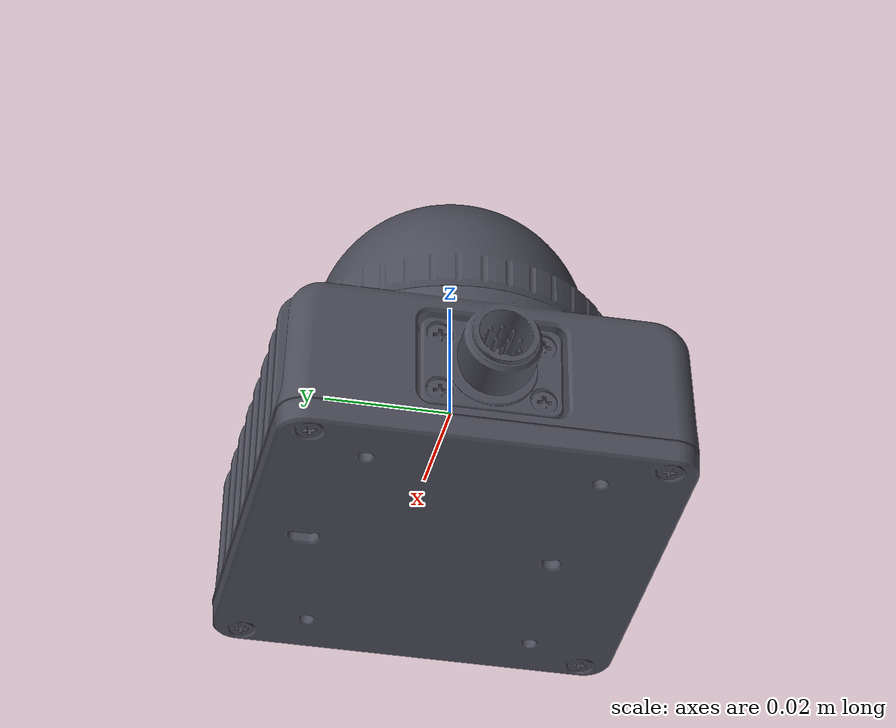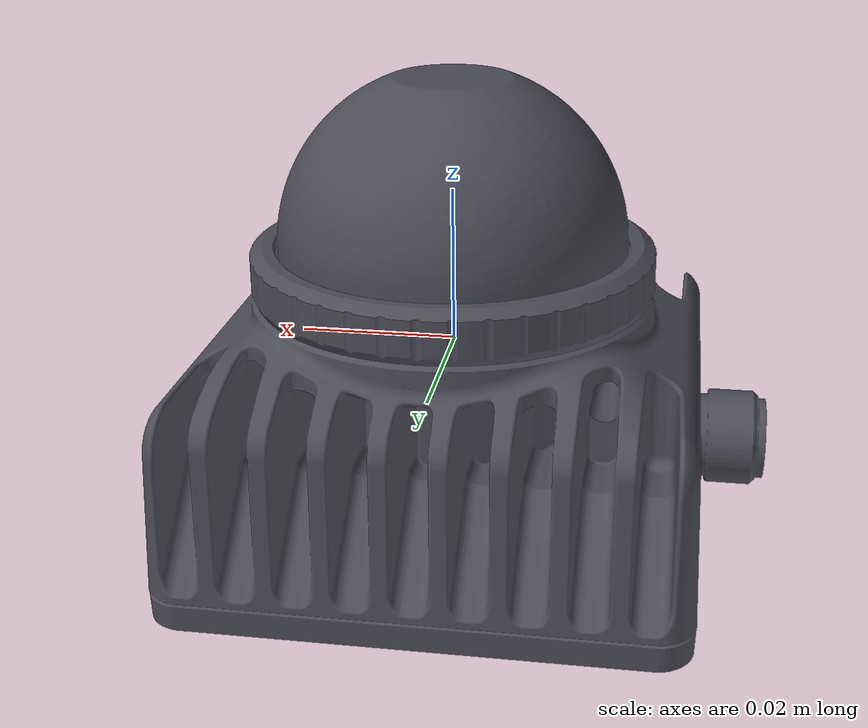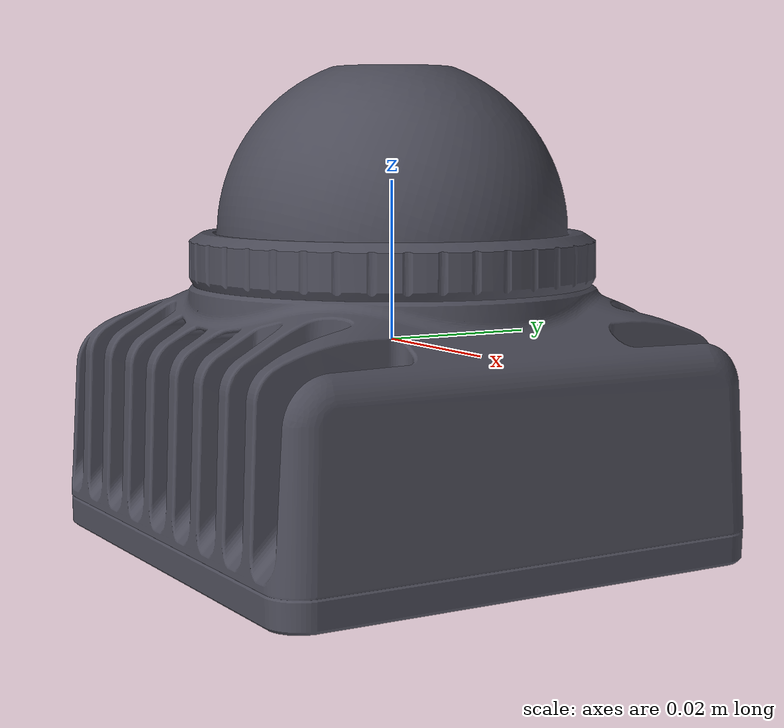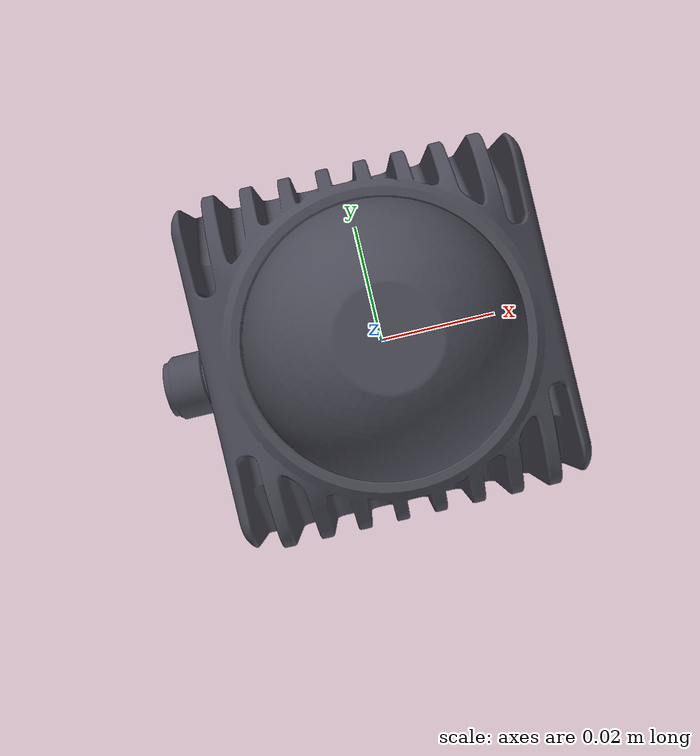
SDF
<?xml version="1.0" encoding="UTF-8"?>
<sdf version='1.9'>
  <model name='mid360'>
    <!-- Roll 90° for mount orientation; visual yaw 180° for mesh -->
    <link name='lidar_link'>
      <pose>0 0 0 0 0 0</pose>
      <inertial>
        <mass>0.1</mass>
        <inertia>
          <ixx>0.00001</ixx>
          <ixy>0</ixy>
          <ixz>0</ixz>
          <iyy>0.00001</iyy>
          <iyz>0</iyz>
          <izz>0.00001</izz>
        </inertia>
      </inertial>
      <visual name='mid360_visual'>
        <pose>0 0 0 1.5708 0 3.14159</pose>
        <geometry>
          <mesh>
            <uri>model://mid360/meshes/mid-360-asm.stl</uri>
            <scale>0.001 0.001 0.001</scale>
          </mesh>
        </geometry>
        <material>
          <diffuse>0.3 0.3 0.35 1</diffuse>
          <specular>0.1 0.1 0.1 1</specular>
        </material>
      </visual>
      <sensor name='mid360' type='gpu_lidar'>
        <gz_frame_id>lidar_link</gz_frame_id>
        <pose>0 0 0 0 0 0</pose>
        <update_rate>10</update_rate>
        <topic>mid360</topic>
        <ray>
          <scan>
            <horizontal>
              <samples>360</samples>
              <resolution>1.0</resolution>
              <min_angle>0.0</min_angle>
              <max_angle>6.283185</max_angle>
            </horizontal>
            <vertical>
              <!-- Mid360 FOV approx: -7.22 deg to +55.22 deg -->
              <samples>100</samples>
              <resolution>1.0</resolution>
              <min_angle>-0.12601</min_angle>
              <max_angle>0.96377</max_angle>
            </vertical>
          </scan>
          <range>
            <min>0.1</min>
            <max>200.0</max>
            <resolution>0.002</resolution>
          </range>
          <noise>
            <type>gaussian</type>
            <mean>0.0</mean>
            <stddev>0.01</stddev>
          </noise>
        </ray>
        <always_on>true</always_on>
        <visualize>true</visualize>
        <plugin filename="livox_gz_plugin" name="livox_gz_plugin::LivoxPointsPlugin">
          <scan_topic>/mid360/points</scan_topic>
          <ros_topic>livox/lidar</ros_topic>
          <frame_id>lidar_link</frame_id>
        </plugin>
      </sensor>
      <!-- Livox Mid360 built-in IMU: /livox/imu for ros_gz_bridge → livox/imu (FAST_LIO) -->
      <sensor name="livox_imu" type="imu">
        <always_on>true</always_on>
        <update_rate>200</update_rate>
        <topic>/livox/imu</topic>
        <gz_frame_id>livox_imu</gz_frame_id>
        <pose>0.011 0.02329 -0.04412 0 0 0</pose>
        <imu>
          <angular_velocity>
            <x><noise type="gaussian"><mean>0.0</mean><stddev>0.0008726646</stddev></noise></x>
            <y><noise type="gaussian"><mean>0.0</mean><stddev>0.0008726646</stddev></noise></y>
            <z><noise type="gaussian"><mean>0.0</mean><stddev>0.0008726646</stddev></noise></z>
          </angular_velocity>
          <linear_acceleration>
            <x><noise type="gaussian"><mean>0.0</mean><stddev>0.00637</stddev></noise></x>
            <y><noise type="gaussian"><mean>0.0</mean><stddev>0.00637</stddev></noise></y>
            <z><noise type="gaussian"><mean>0.0</mean><stddev>0.00686</stddev></noise></z>
          </linear_acceleration>
        </imu>
      </sensor>
    </link>
  </model>
</sdf>
